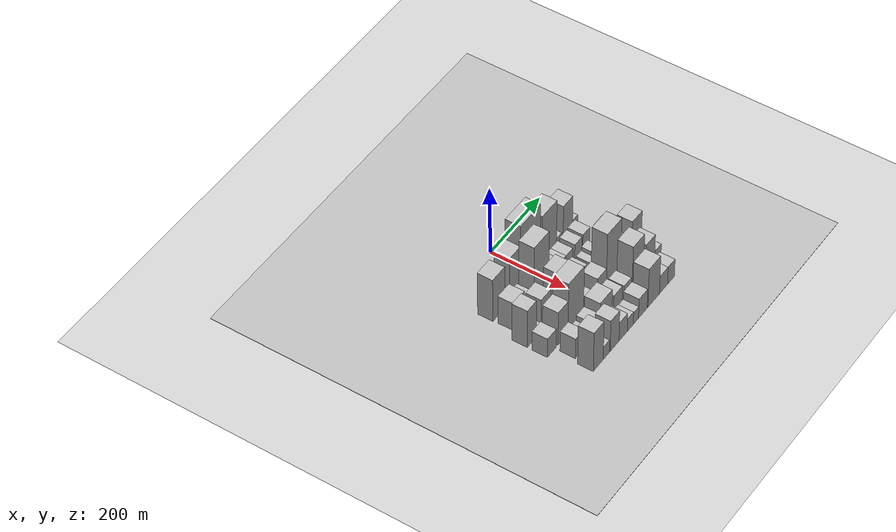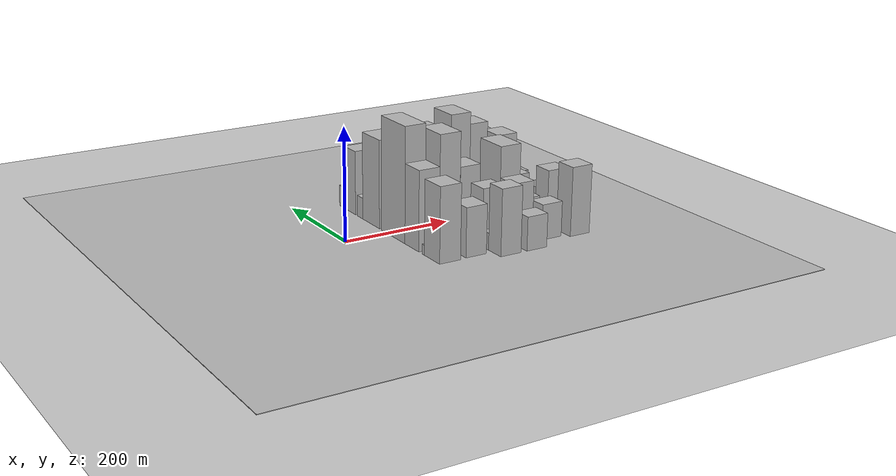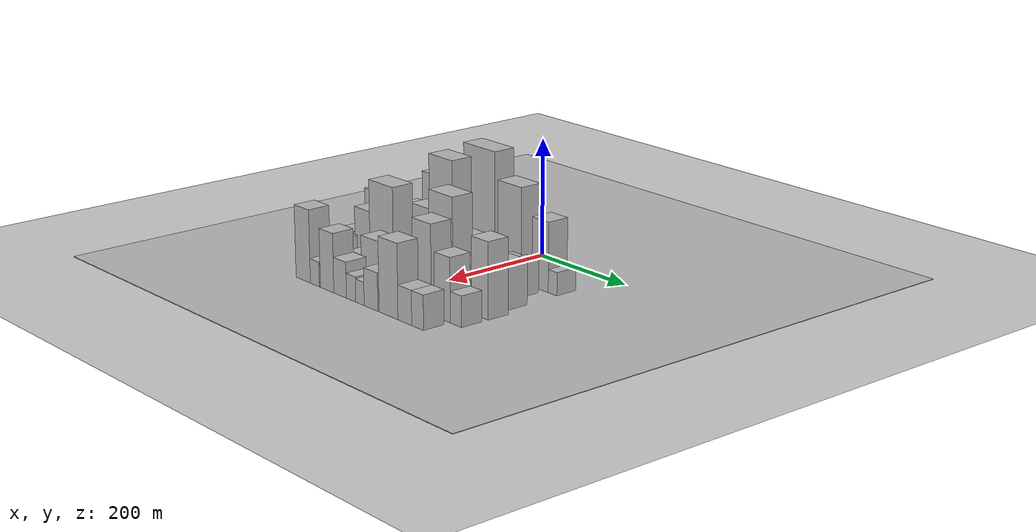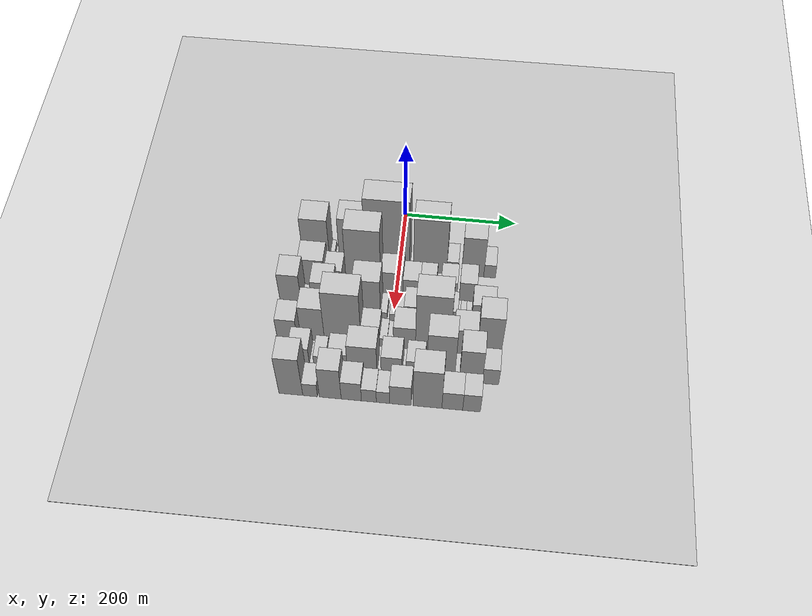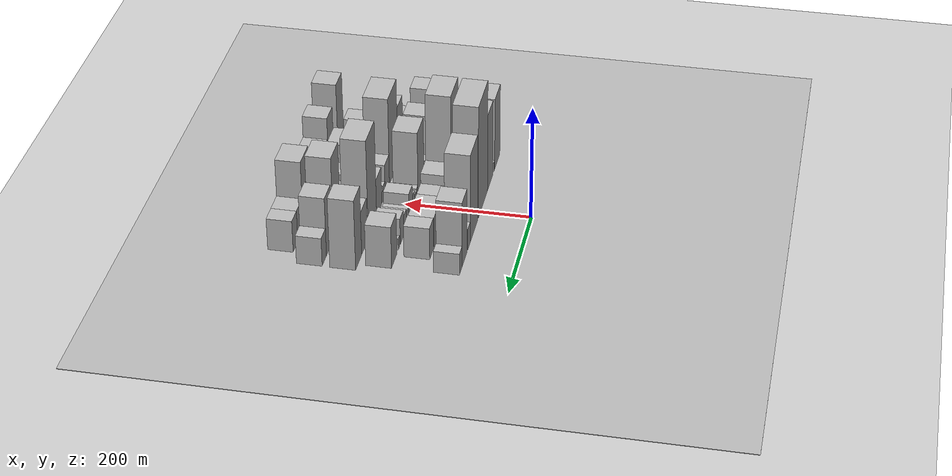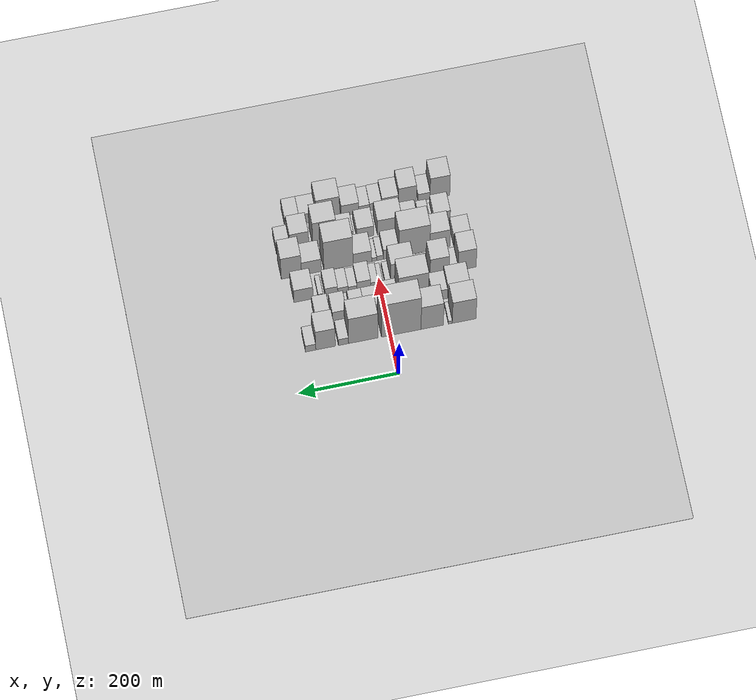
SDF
<sdf version="1.6">
 <world name="default">
  <include><name>ground_plane_1</name><uri>model://HANNAS_ground_plane</uri></include>
  <include>
   <name>ground_plane_2</name>
   <uri>model://HANNAS_ground_plane</uri>
   <pose>100 0 0  0 0 0</pose>
  </include>
  <model name="building_21">
   <static>1</static>
   <pose>100.0000 -146.3669 0 0.000000 0.000000 0.000000</pose>
   <link name="link">
    <pose>0 0 66.00 0 0 0</pose>
    <collision name="collision"><geometry><box><size>40.0000 47.4209 132.0000</size></box></geometry></collision>
    <visual name="visual">
     <cast_shadows>0</cast_shadows>
     <geometry><box><size>40.0000 47.4209 132.0000</size></box></geometry>
     <material>
      <script>
       <uri>model://HANNAS_wall/materials/scripts</uri>
       <uri>model://HANNAS_wall/materials/textures</uri>
       <name>vrc/HANNAS_wall</name>
      </script>
     </material>
    </visual>
   </link>
  </model>
  <model name="building_22">
   <static>1</static>
   <pose>100.0000 -118.8623 0 0.000000 0.000000 0.000000</pose>
   <link name="link">
    <pose>0 0 9.00 0 0 0</pose>
    <collision name="collision"><geometry><box><size>40.0000 7.5882 18.0000</size></box></geometry></collision>
    <visual name="visual">
     <cast_shadows>0</cast_shadows>
     <geometry><box><size>40.0000 7.5882 18.0000</size></box></geometry>
     <material>
      <script>
       <uri>model://HANNAS_wall/materials/scripts</uri>
       <uri>model://HANNAS_wall/materials/textures</uri>
       <name>vrc/HANNAS_wall</name>
      </script>
     </material>
    </visual>
   </link>
  </model>
  <model name="building_23">
   <static>1</static>
   <pose>100.0000 -82.6752 0 0.000000 0.000000 0.000000</pose>
   <link name="link">
    <pose>0 0 70.50 0 0 0</pose>
    <collision name="collision"><geometry><box><size>40.0000 44.7859 141.0000</size></box></geometry></collision>
    <visual name="visual">
     <cast_shadows>0</cast_shadows>
     <geometry><box><size>40.0000 44.7859 141.0000</size></box></geometry>
     <material>
      <script>
       <uri>model://HANNAS_wall/materials/scripts</uri>
       <uri>model://HANNAS_wall/materials/textures</uri>
       <name>vrc/HANNAS_wall</name>
      </script>
     </material>
    </visual>
   </link>
  </model>
  <model name="building_24">
   <static>1</static>
   <pose>100.0000 -20.8004 0 0.000000 0.000000 0.000000</pose>
   <link name="link">
    <pose>0 0 102.00 0 0 0</pose>
    <collision name="collision"><geometry><box><size>40.0000 78.9638 204.0000</size></box></geometry></collision>
    <visual name="visual">
     <cast_shadows>0</cast_shadows>
     <geometry><box><size>40.0000 78.9638 204.0000</size></box></geometry>
     <material>
      <script>
       <uri>model://HANNAS_wall/materials/scripts</uri>
       <uri>model://HANNAS_wall/materials/textures</uri>
       <name>vrc/HANNAS_wall</name>
      </script>
     </material>
    </visual>
   </link>
  </model>
  <model name="building_25">
   <static>1</static>
   <pose>100.0000 55.0314 0 0.000000 0.000000 0.000000</pose>
   <link name="link">
    <pose>0 0 79.50 0 0 0</pose>
    <collision name="collision"><geometry><box><size>40.0000 58.6997 159.0000</size></box></geometry></collision>
    <visual name="visual">
     <cast_shadows>0</cast_shadows>
     <geometry><box><size>40.0000 58.6997 159.0000</size></box></geometry>
     <material>
      <script>
       <uri>model://HANNAS_wall/materials/scripts</uri>
       <uri>model://HANNAS_wall/materials/textures</uri>
       <name>vrc/HANNAS_wall</name>
      </script>
     </material>
    </visual>
   </link>
  </model>
  <model name="building_26">
   <static>1</static>
   <pose>100.0000 94.5070 0 0.000000 0.000000 0.000000</pose>
   <link name="link">
    <pose>0 0 19.50 0 0 0</pose>
    <collision name="collision"><geometry><box><size>40.0000 20.2516 39.0000</size></box></geometry></collision>
    <visual name="visual">
     <cast_shadows>0</cast_shadows>
     <geometry><box><size>40.0000 20.2516 39.0000</size></box></geometry>
     <material>
      <script>
       <uri>model://HANNAS_wall/materials/scripts</uri>
       <uri>model://HANNAS_wall/materials/textures</uri>
       <name>vrc/HANNAS_wall</name>
      </script>
     </material>
    </visual>
   </link>
  </model>
  <model name="building_27">
   <static>1</static>
   <pose>100.0000 130.1339 0 0.000000 0.000000 0.000000</pose>
   <link name="link">
    <pose>0 0 58.50 0 0 0</pose>
    <collision name="collision"><geometry><box><size>40.0000 39.0021 117.0000</size></box></geometry></collision>
    <visual name="visual">
     <cast_shadows>0</cast_shadows>
     <geometry><box><size>40.0000 39.0021 117.0000</size></box></geometry>
     <material>
      <script>
       <uri>model://HANNAS_wall/materials/scripts</uri>
       <uri>model://HANNAS_wall/materials/textures</uri>
       <name>vrc/HANNAS_wall</name>
      </script>
     </material>
    </visual>
   </link>
  </model>
  <model name="building_28">
   <static>1</static>
   <pose>100.0000 159.9920 0 0.000000 0.000000 0.000000</pose>
   <link name="link">
    <pose>0 0 19.50 0 0 0</pose>
    <collision name="collision"><geometry><box><size>40.0000 20.7141 39.0000</size></box></geometry></collision>
    <visual name="visual">
     <cast_shadows>0</cast_shadows>
     <geometry><box><size>40.0000 20.7141 39.0000</size></box></geometry>
     <material>
      <script>
       <uri>model://HANNAS_wall/materials/scripts</uri>
       <uri>model://HANNAS_wall/materials/textures</uri>
       <name>vrc/HANNAS_wall</name>
      </script>
     </material>
    </visual>
   </link>
  </model>
  <model name="building_69">
   <static>1</static>
   <pose>152.0000 -145.8202 0 0.000000 0.000000 0.000000</pose>
   <link name="link">
    <pose>0 0 43.50 0 0 0</pose>
    <collision name="collision"><geometry><box><size>40.0000 43.8940 87.0000</size></box></geometry></collision>
    <visual name="visual">
     <cast_shadows>0</cast_shadows>
     <geometry><box><size>40.0000 43.8940 87.0000</size></box></geometry>
     <material>
      <script>
       <uri>model://HANNAS_wall/materials/scripts</uri>
       <uri>model://HANNAS_wall/materials/textures</uri>
       <name>vrc/HANNAS_wall</name>
      </script>
     </material>
    </visual>
   </link>
  </model>
  <model name="building_70">
   <static>1</static>
   <pose>152.0000 -108.3844 0 0.000000 0.000000 0.000000</pose>
   <link name="link">
    <pose>0 0 30.00 0 0 0</pose>
    <collision name="collision"><geometry><box><size>40.0000 30.9776 60.0000</size></box></geometry></collision>
    <visual name="visual">
     <cast_shadows>0</cast_shadows>
     <geometry><box><size>40.0000 30.9776 60.0000</size></box></geometry>
     <material>
      <script>
       <uri>model://HANNAS_wall/materials/scripts</uri>
       <uri>model://HANNAS_wall/materials/textures</uri>
       <name>vrc/HANNAS_wall</name>
      </script>
     </material>
    </visual>
   </link>
  </model>
  <model name="building_71">
   <static>1</static>
   <pose>152.0000 -56.1000 0 0.000000 0.000000 0.000000</pose>
   <link name="link">
    <pose>0 0 94.50 0 0 0</pose>
    <collision name="collision"><geometry><box><size>40.0000 59.5911 189.0000</size></box></geometry></collision>
    <visual name="visual">
     <cast_shadows>0</cast_shadows>
     <geometry><box><size>40.0000 59.5911 189.0000</size></box></geometry>
     <material>
      <script>
       <uri>model://HANNAS_wall/materials/scripts</uri>
       <uri>model://HANNAS_wall/materials/textures</uri>
       <name>vrc/HANNAS_wall</name>
      </script>
     </material>
    </visual>
   </link>
  </model>
  <model name="building_72">
   <static>1</static>
   <pose>152.0000 -7.0598 0 0.000000 0.000000 0.000000</pose>
   <link name="link">
    <pose>0 0 34.50 0 0 0</pose>
    <collision name="collision"><geometry><box><size>40.0000 38.4893 69.0000</size></box></geometry></collision>
    <visual name="visual">
     <cast_shadows>0</cast_shadows>
     <geometry><box><size>40.0000 38.4893 69.0000</size></box></geometry>
     <material>
      <script>
       <uri>model://HANNAS_wall/materials/scripts</uri>
       <uri>model://HANNAS_wall/materials/textures</uri>
       <name>vrc/HANNAS_wall</name>
      </script>
     </material>
    </visual>
   </link>
  </model>
  <model name="building_73">
   <static>1</static>
   <pose>152.0000 27.1182 0 0.000000 0.000000 0.000000</pose>
   <link name="link">
    <pose>0 0 25.50 0 0 0</pose>
    <collision name="collision"><geometry><box><size>40.0000 29.8667 51.0000</size></box></geometry></collision>
    <visual name="visual">
     <cast_shadows>0</cast_shadows>
     <geometry><box><size>40.0000 29.8667 51.0000</size></box></geometry>
     <material>
      <script>
       <uri>model://HANNAS_wall/materials/scripts</uri>
       <uri>model://HANNAS_wall/materials/textures</uri>
       <name>vrc/HANNAS_wall</name>
      </script>
     </material>
    </visual>
   </link>
  </model>
  <model name="building_74">
   <static>1</static>
   <pose>152.0000 55.7334 0 0.000000 0.000000 0.000000</pose>
   <link name="link">
    <pose>0 0 25.50 0 0 0</pose>
    <collision name="collision"><geometry><box><size>40.0000 27.3638 51.0000</size></box></geometry></collision>
    <visual name="visual">
     <cast_shadows>0</cast_shadows>
     <geometry><box><size>40.0000 27.3638 51.0000</size></box></geometry>
     <material>
      <script>
       <uri>model://HANNAS_wall/materials/scripts</uri>
       <uri>model://HANNAS_wall/materials/textures</uri>
       <name>vrc/HANNAS_wall</name>
      </script>
     </material>
    </visual>
   </link>
  </model>
  <model name="building_75">
   <static>1</static>
   <pose>152.0000 91.7584 0 0.000000 0.000000 0.000000</pose>
   <link name="link">
    <pose>0 0 27.00 0 0 0</pose>
    <collision name="collision"><geometry><box><size>40.0000 28.6861 54.0000</size></box></geometry></collision>
    <visual name="visual">
     <cast_shadows>0</cast_shadows>
     <geometry><box><size>40.0000 28.6861 54.0000</size></box></geometry>
     <material>
      <script>
       <uri>model://HANNAS_wall/materials/scripts</uri>
       <uri>model://HANNAS_wall/materials/textures</uri>
       <name>vrc/HANNAS_wall</name>
      </script>
     </material>
    </visual>
   </link>
  </model>
  <model name="building_76">
   <static>1</static>
   <pose>152.0000 124.8926 0 0.000000 0.000000 0.000000</pose>
   <link name="link">
    <pose>0 0 28.50 0 0 0</pose>
    <collision name="collision"><geometry><box><size>40.0000 29.5824 57.0000</size></box></geometry></collision>
    <visual name="visual">
     <cast_shadows>0</cast_shadows>
     <geometry><box><size>40.0000 29.5824 57.0000</size></box></geometry>
     <material>
      <script>
       <uri>model://HANNAS_wall/materials/scripts</uri>
       <uri>model://HANNAS_wall/materials/textures</uri>
       <name>vrc/HANNAS_wall</name>
      </script>
     </material>
    </visual>
   </link>
  </model>
  <model name="building_120">
   <static>1</static>
   <pose>204.0000 -174.0396 0 0.000000 0.000000 0.000000</pose>
   <link name="link">
    <pose>0 0 58.50 0 0 0</pose>
    <collision name="collision"><geometry><box><size>40.0000 36.3016 117.0000</size></box></geometry></collision>
    <visual name="visual">
     <cast_shadows>0</cast_shadows>
     <geometry><box><size>40.0000 36.3016 117.0000</size></box></geometry>
     <material>
      <script>
       <uri>model://HANNAS_wall/materials/scripts</uri>
       <uri>model://HANNAS_wall/materials/textures</uri>
       <name>vrc/HANNAS_wall</name>
      </script>
     </material>
    </visual>
   </link>
  </model>
  <model name="building_121">
   <static>1</static>
   <pose>204.0000 -146.9615 0 0.000000 0.000000 0.000000</pose>
   <link name="link">
    <pose>0 0 15.00 0 0 0</pose>
    <collision name="collision"><geometry><box><size>40.0000 17.8546 30.0000</size></box></geometry></collision>
    <visual name="visual">
     <cast_shadows>0</cast_shadows>
     <geometry><box><size>40.0000 17.8546 30.0000</size></box></geometry>
     <material>
      <script>
       <uri>model://HANNAS_wall/materials/scripts</uri>
       <uri>model://HANNAS_wall/materials/textures</uri>
       <name>vrc/HANNAS_wall</name>
      </script>
     </material>
    </visual>
   </link>
  </model>
  <model name="building_122">
   <static>1</static>
   <pose>204.0000 -118.9829 0 0.000000 0.000000 0.000000</pose>
   <link name="link">
    <pose>0 0 51.00 0 0 0</pose>
    <collision name="collision"><geometry><box><size>40.0000 38.1026 102.0000</size></box></geometry></collision>
    <visual name="visual">
     <cast_shadows>0</cast_shadows>
     <geometry><box><size>40.0000 38.1026 102.0000</size></box></geometry>
     <material>
      <script>
       <uri>model://HANNAS_wall/materials/scripts</uri>
       <uri>model://HANNAS_wall/materials/textures</uri>
       <name>vrc/HANNAS_wall</name>
      </script>
     </material>
    </visual>
   </link>
  </model>
  <model name="building_123">
   <static>1</static>
   <pose>204.0000 -86.7520 0 0.000000 0.000000 0.000000</pose>
   <link name="link">
    <pose>0 0 16.50 0 0 0</pose>
    <collision name="collision"><geometry><box><size>40.0000 18.3591 33.0000</size></box></geometry></collision>
    <visual name="visual">
     <cast_shadows>0</cast_shadows>
     <geometry><box><size>40.0000 18.3591 33.0000</size></box></geometry>
     <material>
      <script>
       <uri>model://HANNAS_wall/materials/scripts</uri>
       <uri>model://HANNAS_wall/materials/textures</uri>
       <name>vrc/HANNAS_wall</name>
      </script>
     </material>
    </visual>
   </link>
  </model>
  <model name="building_124">
   <static>1</static>
   <pose>204.0000 -44.3405 0 0.000000 0.000000 0.000000</pose>
   <link name="link">
    <pose>0 0 60.00 0 0 0</pose>
    <collision name="collision"><geometry><box><size>40.0000 46.4641 120.0000</size></box></geometry></collision>
    <visual name="visual">
     <cast_shadows>0</cast_shadows>
     <geometry><box><size>40.0000 46.4641 120.0000</size></box></geometry>
     <material>
      <script>
       <uri>model://HANNAS_wall/materials/scripts</uri>
       <uri>model://HANNAS_wall/materials/textures</uri>
       <name>vrc/HANNAS_wall</name>
      </script>
     </material>
    </visual>
   </link>
  </model>
  <model name="building_125">
   <static>1</static>
   <pose>204.0000 -15.4487 0 0.000000 0.000000 0.000000</pose>
   <link name="link">
    <pose>0 0 12.00 0 0 0</pose>
    <collision name="collision"><geometry><box><size>40.0000 11.3195 24.0000</size></box></geometry></collision>
    <visual name="visual">
     <cast_shadows>0</cast_shadows>
     <geometry><box><size>40.0000 11.3195 24.0000</size></box></geometry>
     <material>
      <script>
       <uri>model://HANNAS_wall/materials/scripts</uri>
       <uri>model://HANNAS_wall/materials/textures</uri>
       <name>vrc/HANNAS_wall</name>
      </script>
     </material>
    </visual>
   </link>
  </model>
  <model name="building_126">
   <static>1</static>
   <pose>204.0000 -0.9359 0 0.000000 0.000000 0.000000</pose>
   <link name="link">
    <pose>0 0 10.50 0 0 0</pose>
    <collision name="collision"><geometry><box><size>40.0000 9.7062 21.0000</size></box></geometry></collision>
    <visual name="visual">
     <cast_shadows>0</cast_shadows>
     <geometry><box><size>40.0000 9.7062 21.0000</size></box></geometry>
     <material>
      <script>
       <uri>model://HANNAS_wall/materials/scripts</uri>
       <uri>model://HANNAS_wall/materials/textures</uri>
       <name>vrc/HANNAS_wall</name>
      </script>
     </material>
    </visual>
   </link>
  </model>
  <model name="building_127">
   <static>1</static>
   <pose>204.0000 11.4635 0 0.000000 0.000000 0.000000</pose>
   <link name="link">
    <pose>0 0 15.00 0 0 0</pose>
    <collision name="collision"><geometry><box><size>40.0000 15.0927 30.0000</size></box></geometry></collision>
    <visual name="visual">
     <cast_shadows>0</cast_shadows>
     <geometry><box><size>40.0000 15.0927 30.0000</size></box></geometry>
     <material>
      <script>
       <uri>model://HANNAS_wall/materials/scripts</uri>
       <uri>model://HANNAS_wall/materials/textures</uri>
       <name>vrc/HANNAS_wall</name>
      </script>
     </material>
    </visual>
   </link>
  </model>
  <model name="building_128">
   <static>1</static>
   <pose>204.0000 32.6948 0 0.000000 0.000000 0.000000</pose>
   <link name="link">
    <pose>0 0 25.50 0 0 0</pose>
    <collision name="collision"><geometry><box><size>40.0000 27.3698 51.0000</size></box></geometry></collision>
    <visual name="visual">
     <cast_shadows>0</cast_shadows>
     <geometry><box><size>40.0000 27.3698 51.0000</size></box></geometry>
     <material>
      <script>
       <uri>model://HANNAS_wall/materials/scripts</uri>
       <uri>model://HANNAS_wall/materials/textures</uri>
       <name>vrc/HANNAS_wall</name>
      </script>
     </material>
    </visual>
   </link>
  </model>
  <model name="building_129">
   <static>1</static>
   <pose>204.0000 55.2633 0 0.000000 0.000000 0.000000</pose>
   <link name="link">
    <pose>0 0 15.00 0 0 0</pose>
    <collision name="collision"><geometry><box><size>40.0000 17.7672 30.0000</size></box></geometry></collision>
    <visual name="visual">
     <cast_shadows>0</cast_shadows>
     <geometry><box><size>40.0000 17.7672 30.0000</size></box></geometry>
     <material>
      <script>
       <uri>model://HANNAS_wall/materials/scripts</uri>
       <uri>model://HANNAS_wall/materials/textures</uri>
       <name>vrc/HANNAS_wall</name>
      </script>
     </material>
    </visual>
   </link>
  </model>
  <model name="building_130">
   <static>1</static>
   <pose>204.0000 74.5748 0 0.000000 0.000000 0.000000</pose>
   <link name="link">
    <pose>0 0 18.00 0 0 0</pose>
    <collision name="collision"><geometry><box><size>40.0000 20.8560 36.0000</size></box></geometry></collision>
    <visual name="visual">
     <cast_shadows>0</cast_shadows>
     <geometry><box><size>40.0000 20.8560 36.0000</size></box></geometry>
     <material>
      <script>
       <uri>model://HANNAS_wall/materials/scripts</uri>
       <uri>model://HANNAS_wall/materials/textures</uri>
       <name>vrc/HANNAS_wall</name>
      </script>
     </material>
    </visual>
   </link>
  </model>
  <model name="building_131">
   <static>1</static>
   <pose>204.0000 97.6627 0 0.000000 0.000000 0.000000</pose>
   <link name="link">
    <pose>0 0 24.00 0 0 0</pose>
    <collision name="collision"><geometry><box><size>40.0000 25.3198 48.0000</size></box></geometry></collision>
    <visual name="visual">
     <cast_shadows>0</cast_shadows>
     <geometry><box><size>40.0000 25.3198 48.0000</size></box></geometry>
     <material>
      <script>
       <uri>model://HANNAS_wall/materials/scripts</uri>
       <uri>model://HANNAS_wall/materials/textures</uri>
       <name>vrc/HANNAS_wall</name>
      </script>
     </material>
    </visual>
   </link>
  </model>
  <model name="building_132">
   <static>1</static>
   <pose>204.0000 119.2019 0 0.000000 0.000000 0.000000</pose>
   <link name="link">
    <pose>0 0 10.50 0 0 0</pose>
    <collision name="collision"><geometry><box><size>40.0000 9.7584 21.0000</size></box></geometry></collision>
    <visual name="visual">
     <cast_shadows>0</cast_shadows>
     <geometry><box><size>40.0000 9.7584 21.0000</size></box></geometry>
     <material>
      <script>
       <uri>model://HANNAS_wall/materials/scripts</uri>
       <uri>model://HANNAS_wall/materials/textures</uri>
       <name>vrc/HANNAS_wall</name>
      </script>
     </material>
    </visual>
   </link>
  </model>
  <model name="building_133">
   <static>1</static>
   <pose>204.0000 153.3332 0 0.000000 0.000000 0.000000</pose>
   <link name="link">
    <pose>0 0 37.50 0 0 0</pose>
    <collision name="collision"><geometry><box><size>40.0000 38.5042 75.0000</size></box></geometry></collision>
    <visual name="visual">
     <cast_shadows>0</cast_shadows>
     <geometry><box><size>40.0000 38.5042 75.0000</size></box></geometry>
     <material>
      <script>
       <uri>model://HANNAS_wall/materials/scripts</uri>
       <uri>model://HANNAS_wall/materials/textures</uri>
       <name>vrc/HANNAS_wall</name>
      </script>
     </material>
    </visual>
   </link>
  </model>
  <model name="building_171">
   <static>1</static>
   <pose>256.0000 -174.9906 0 0.000000 0.000000 0.000000</pose>
   <link name="link">
    <pose>0 0 30.00 0 0 0</pose>
    <collision name="collision"><geometry><box><size>40.0000 34.5190 60.0000</size></box></geometry></collision>
    <visual name="visual">
     <cast_shadows>0</cast_shadows>
     <geometry><box><size>40.0000 34.5190 60.0000</size></box></geometry>
     <material>
      <script>
       <uri>model://HANNAS_wall/materials/scripts</uri>
       <uri>model://HANNAS_wall/materials/textures</uri>
       <name>vrc/HANNAS_wall</name>
      </script>
     </material>
    </visual>
   </link>
  </model>
  <model name="building_172">
   <static>1</static>
   <pose>256.0000 -130.5795 0 0.000000 0.000000 0.000000</pose>
   <link name="link">
    <pose>0 0 52.50 0 0 0</pose>
    <collision name="collision"><geometry><box><size>40.0000 40.3032 105.0000</size></box></geometry></collision>
    <visual name="visual">
     <cast_shadows>0</cast_shadows>
     <geometry><box><size>40.0000 40.3032 105.0000</size></box></geometry>
     <material>
      <script>
       <uri>model://HANNAS_wall/materials/scripts</uri>
       <uri>model://HANNAS_wall/materials/textures</uri>
       <name>vrc/HANNAS_wall</name>
      </script>
     </material>
    </visual>
   </link>
  </model>
  <model name="building_173">
   <static>1</static>
   <pose>256.0000 -79.3695 0 0.000000 0.000000 0.000000</pose>
   <link name="link">
    <pose>0 0 79.50 0 0 0</pose>
    <collision name="collision"><geometry><box><size>40.0000 62.1167 159.0000</size></box></geometry></collision>
    <visual name="visual">
     <cast_shadows>0</cast_shadows>
     <geometry><box><size>40.0000 62.1167 159.0000</size></box></geometry>
     <material>
      <script>
       <uri>model://HANNAS_wall/materials/scripts</uri>
       <uri>model://HANNAS_wall/materials/textures</uri>
       <name>vrc/HANNAS_wall</name>
      </script>
     </material>
    </visual>
   </link>
  </model>
  <model name="building_174">
   <static>1</static>
   <pose>256.0000 -32.5837 0 0.000000 0.000000 0.000000</pose>
   <link name="link">
    <pose>0 0 28.50 0 0 0</pose>
    <collision name="collision"><geometry><box><size>40.0000 31.4550 57.0000</size></box></geometry></collision>
    <visual name="visual">
     <cast_shadows>0</cast_shadows>
     <geometry><box><size>40.0000 31.4550 57.0000</size></box></geometry>
     <material>
      <script>
       <uri>model://HANNAS_wall/materials/scripts</uri>
       <uri>model://HANNAS_wall/materials/textures</uri>
       <name>vrc/HANNAS_wall</name>
      </script>
     </material>
    </visual>
   </link>
  </model>
  <model name="building_175">
   <static>1</static>
   <pose>256.0000 -10.3083 0 0.000000 0.000000 0.000000</pose>
   <link name="link">
    <pose>0 0 13.50 0 0 0</pose>
    <collision name="collision"><geometry><box><size>40.0000 13.0957 27.0000</size></box></geometry></collision>
    <visual name="visual">
     <cast_shadows>0</cast_shadows>
     <geometry><box><size>40.0000 13.0957 27.0000</size></box></geometry>
     <material>
      <script>
       <uri>model://HANNAS_wall/materials/scripts</uri>
       <uri>model://HANNAS_wall/materials/textures</uri>
       <name>vrc/HANNAS_wall</name>
      </script>
     </material>
    </visual>
   </link>
  </model>
  <model name="building_176">
   <static>1</static>
   <pose>256.0000 1.4428 0 0.000000 0.000000 0.000000</pose>
   <link name="link">
    <pose>0 0 10.50 0 0 0</pose>
    <collision name="collision"><geometry><box><size>40.0000 10.4065 21.0000</size></box></geometry></collision>
    <visual name="visual">
     <cast_shadows>0</cast_shadows>
     <geometry><box><size>40.0000 10.4065 21.0000</size></box></geometry>
     <material>
      <script>
       <uri>model://HANNAS_wall/materials/scripts</uri>
       <uri>model://HANNAS_wall/materials/textures</uri>
       <name>vrc/HANNAS_wall</name>
      </script>
     </material>
    </visual>
   </link>
  </model>
  <model name="building_177">
   <static>1</static>
   <pose>256.0000 25.2724 0 0.000000 0.000000 0.000000</pose>
   <link name="link">
    <pose>0 0 34.50 0 0 0</pose>
    <collision name="collision"><geometry><box><size>40.0000 37.2526 69.0000</size></box></geometry></collision>
    <visual name="visual">
     <cast_shadows>0</cast_shadows>
     <geometry><box><size>40.0000 37.2526 69.0000</size></box></geometry>
     <material>
      <script>
       <uri>model://HANNAS_wall/materials/scripts</uri>
       <uri>model://HANNAS_wall/materials/textures</uri>
       <name>vrc/HANNAS_wall</name>
      </script>
     </material>
    </visual>
   </link>
  </model>
  <model name="building_178">
   <static>1</static>
   <pose>256.0000 73.0639 0 0.000000 0.000000 0.000000</pose>
   <link name="link">
    <pose>0 0 88.50 0 0 0</pose>
    <collision name="collision"><geometry><box><size>40.0000 58.3304 177.0000</size></box></geometry></collision>
    <visual name="visual">
     <cast_shadows>0</cast_shadows>
     <geometry><box><size>40.0000 58.3304 177.0000</size></box></geometry>
     <material>
      <script>
       <uri>model://HANNAS_wall/materials/scripts</uri>
       <uri>model://HANNAS_wall/materials/textures</uri>
       <name>vrc/HANNAS_wall</name>
      </script>
     </material>
    </visual>
   </link>
  </model>
  <model name="building_179">
   <static>1</static>
   <pose>256.0000 127.1322 0 0.000000 0.000000 0.000000</pose>
   <link name="link">
    <pose>0 0 39.00 0 0 0</pose>
    <collision name="collision"><geometry><box><size>40.0000 39.8063 78.0000</size></box></geometry></collision>
    <visual name="visual">
     <cast_shadows>0</cast_shadows>
     <geometry><box><size>40.0000 39.8063 78.0000</size></box></geometry>
     <material>
      <script>
       <uri>model://HANNAS_wall/materials/scripts</uri>
       <uri>model://HANNAS_wall/materials/textures</uri>
       <name>vrc/HANNAS_wall</name>
      </script>
     </material>
    </visual>
   </link>
  </model>
  <model name="building_180">
   <static>1</static>
   <pose>256.0000 167.3142 0 0.000000 0.000000 0.000000</pose>
   <link name="link">
    <pose>0 0 63.00 0 0 0</pose>
    <collision name="collision"><geometry><box><size>40.0000 40.5577 126.0000</size></box></geometry></collision>
    <visual name="visual">
     <cast_shadows>0</cast_shadows>
     <geometry><box><size>40.0000 40.5577 126.0000</size></box></geometry>
     <material>
      <script>
       <uri>model://HANNAS_wall/materials/scripts</uri>
       <uri>model://HANNAS_wall/materials/textures</uri>
       <name>vrc/HANNAS_wall</name>
      </script>
     </material>
    </visual>
   </link>
  </model>
  <model name="building_219">
   <static>1</static>
   <pose>308.0000 -144.8545 0 0.000000 0.000000 0.000000</pose>
   <link name="link">
    <pose>0 0 31.50 0 0 0</pose>
    <collision name="collision"><geometry><box><size>40.0000 33.7891 63.0000</size></box></geometry></collision>
    <visual name="visual">
     <cast_shadows>0</cast_shadows>
     <geometry><box><size>40.0000 33.7891 63.0000</size></box></geometry>
     <material>
      <script>
       <uri>model://HANNAS_wall/materials/scripts</uri>
       <uri>model://HANNAS_wall/materials/textures</uri>
       <name>vrc/HANNAS_wall</name>
      </script>
     </material>
    </visual>
   </link>
  </model>
  <model name="building_220">
   <static>1</static>
   <pose>308.0000 -124.3566 0 0.000000 0.000000 0.000000</pose>
   <link name="link">
    <pose>0 0 7.50 0 0 0</pose>
    <collision name="collision"><geometry><box><size>40.0000 7.2067 15.0000</size></box></geometry></collision>
    <visual name="visual">
     <cast_shadows>0</cast_shadows>
     <geometry><box><size>40.0000 7.2067 15.0000</size></box></geometry>
     <material>
      <script>
       <uri>model://HANNAS_wall/materials/scripts</uri>
       <uri>model://HANNAS_wall/materials/textures</uri>
       <name>vrc/HANNAS_wall</name>
      </script>
     </material>
    </visual>
   </link>
  </model>
  <model name="building_221">
   <static>1</static>
   <pose>308.0000 -110.2477 0 0.000000 0.000000 0.000000</pose>
   <link name="link">
    <pose>0 0 21.00 0 0 0</pose>
    <collision name="collision"><geometry><box><size>40.0000 21.0110 42.0000</size></box></geometry></collision>
    <visual name="visual">
     <cast_shadows>0</cast_shadows>
     <geometry><box><size>40.0000 21.0110 42.0000</size></box></geometry>
     <material>
      <script>
       <uri>model://HANNAS_wall/materials/scripts</uri>
       <uri>model://HANNAS_wall/materials/textures</uri>
       <name>vrc/HANNAS_wall</name>
      </script>
     </material>
    </visual>
   </link>
  </model>
  <model name="building_222">
   <static>1</static>
   <pose>308.0000 -80.7277 0 0.000000 0.000000 0.000000</pose>
   <link name="link">
    <pose>0 0 27.00 0 0 0</pose>
    <collision name="collision"><geometry><box><size>40.0000 32.0289 54.0000</size></box></geometry></collision>
    <visual name="visual">
     <cast_shadows>0</cast_shadows>
     <geometry><box><size>40.0000 32.0289 54.0000</size></box></geometry>
     <material>
      <script>
       <uri>model://HANNAS_wall/materials/scripts</uri>
       <uri>model://HANNAS_wall/materials/textures</uri>
       <name>vrc/HANNAS_wall</name>
      </script>
     </material>
    </visual>
   </link>
  </model>
  <model name="building_223">
   <static>1</static>
   <pose>308.0000 -40.0851 0 0.000000 0.000000 0.000000</pose>
   <link name="link">
    <pose>0 0 43.50 0 0 0</pose>
    <collision name="collision"><geometry><box><size>40.0000 49.2563 87.0000</size></box></geometry></collision>
    <visual name="visual">
     <cast_shadows>0</cast_shadows>
     <geometry><box><size>40.0000 49.2563 87.0000</size></box></geometry>
     <material>
      <script>
       <uri>model://HANNAS_wall/materials/scripts</uri>
       <uri>model://HANNAS_wall/materials/textures</uri>
       <name>vrc/HANNAS_wall</name>
      </script>
     </material>
    </visual>
   </link>
  </model>
  <model name="building_224">
   <static>1</static>
   <pose>308.0000 8.7270 0 0.000000 0.000000 0.000000</pose>
   <link name="link">
    <pose>0 0 30.00 0 0 0</pose>
    <collision name="collision"><geometry><box><size>40.0000 34.3678 60.0000</size></box></geometry></collision>
    <visual name="visual">
     <cast_shadows>0</cast_shadows>
     <geometry><box><size>40.0000 34.3678 60.0000</size></box></geometry>
     <material>
      <script>
       <uri>model://HANNAS_wall/materials/scripts</uri>
       <uri>model://HANNAS_wall/materials/textures</uri>
       <name>vrc/HANNAS_wall</name>
      </script>
     </material>
    </visual>
   </link>
  </model>
  <model name="building_225">
   <static>1</static>
   <pose>308.0000 48.0465 0 0.000000 0.000000 0.000000</pose>
   <link name="link">
    <pose>0 0 27.00 0 0 0</pose>
    <collision name="collision"><geometry><box><size>40.0000 30.2713 54.0000</size></box></geometry></collision>
    <visual name="visual">
     <cast_shadows>0</cast_shadows>
     <geometry><box><size>40.0000 30.2713 54.0000</size></box></geometry>
     <material>
      <script>
       <uri>model://HANNAS_wall/materials/scripts</uri>
       <uri>model://HANNAS_wall/materials/textures</uri>
       <name>vrc/HANNAS_wall</name>
      </script>
     </material>
    </visual>
   </link>
  </model>
  <model name="building_226">
   <static>1</static>
   <pose>308.0000 90.4719 0 0.000000 0.000000 0.000000</pose>
   <link name="link">
    <pose>0 0 73.50 0 0 0</pose>
    <collision name="collision"><geometry><box><size>40.0000 46.5794 147.0000</size></box></geometry></collision>
    <visual name="visual">
     <cast_shadows>0</cast_shadows>
     <geometry><box><size>40.0000 46.5794 147.0000</size></box></geometry>
     <material>
      <script>
       <uri>model://HANNAS_wall/materials/scripts</uri>
       <uri>model://HANNAS_wall/materials/textures</uri>
       <name>vrc/HANNAS_wall</name>
      </script>
     </material>
    </visual>
   </link>
  </model>
  <model name="building_227">
   <static>1</static>
   <pose>308.0000 140.6831 0 0.000000 0.000000 0.000000</pose>
   <link name="link">
    <pose>0 0 52.50 0 0 0</pose>
    <collision name="collision"><geometry><box><size>40.0000 37.8431 105.0000</size></box></geometry></collision>
    <visual name="visual">
     <cast_shadows>0</cast_shadows>
     <geometry><box><size>40.0000 37.8431 105.0000</size></box></geometry>
     <material>
      <script>
       <uri>model://HANNAS_wall/materials/scripts</uri>
       <uri>model://HANNAS_wall/materials/textures</uri>
       <name>vrc/HANNAS_wall</name>
      </script>
     </material>
    </visual>
   </link>
  </model>
  <model name="building_228">
   <static>1</static>
   <pose>308.0000 173.2924 0 0.000000 0.000000 0.000000</pose>
   <link name="link">
    <pose>0 0 25.50 0 0 0</pose>
    <collision name="collision"><geometry><box><size>40.0000 27.3754 51.0000</size></box></geometry></collision>
    <visual name="visual">
     <cast_shadows>0</cast_shadows>
     <geometry><box><size>40.0000 27.3754 51.0000</size></box></geometry>
     <material>
      <script>
       <uri>model://HANNAS_wall/materials/scripts</uri>
       <uri>model://HANNAS_wall/materials/textures</uri>
       <name>vrc/HANNAS_wall</name>
      </script>
     </material>
    </visual>
   </link>
  </model>
  <model name="building_274">
   <static>1</static>
   <pose>360.0000 -151.9273 0 0.000000 0.000000 0.000000</pose>
   <link name="link">
    <pose>0 0 61.50 0 0 0</pose>
    <collision name="collision"><geometry><box><size>40.0000 39.6433 123.0000</size></box></geometry></collision>
    <visual name="visual">
     <cast_shadows>0</cast_shadows>
     <geometry><box><size>40.0000 39.6433 123.0000</size></box></geometry>
     <material>
      <script>
       <uri>model://HANNAS_wall/materials/scripts</uri>
       <uri>model://HANNAS_wall/materials/textures</uri>
       <name>vrc/HANNAS_wall</name>
      </script>
     </material>
    </visual>
   </link>
  </model>
  <model name="building_275">
   <static>1</static>
   <pose>360.0000 -119.8659 0 0.000000 0.000000 0.000000</pose>
   <link name="link">
    <pose>0 0 21.00 0 0 0</pose>
    <collision name="collision"><geometry><box><size>40.0000 24.4795 42.0000</size></box></geometry></collision>
    <visual name="visual">
     <cast_shadows>0</cast_shadows>
     <geometry><box><size>40.0000 24.4795 42.0000</size></box></geometry>
     <material>
      <script>
       <uri>model://HANNAS_wall/materials/scripts</uri>
       <uri>model://HANNAS_wall/materials/textures</uri>
       <name>vrc/HANNAS_wall</name>
      </script>
     </material>
    </visual>
   </link>
  </model>
  <model name="building_276">
   <static>1</static>
   <pose>360.0000 -86.5716 0 0.000000 0.000000 0.000000</pose>
   <link name="link">
    <pose>0 0 49.50 0 0 0</pose>
    <collision name="collision"><geometry><box><size>40.0000 36.1091 99.0000</size></box></geometry></collision>
    <visual name="visual">
     <cast_shadows>0</cast_shadows>
     <geometry><box><size>40.0000 36.1091 99.0000</size></box></geometry>
     <material>
      <script>
       <uri>model://HANNAS_wall/materials/scripts</uri>
       <uri>model://HANNAS_wall/materials/textures</uri>
       <name>vrc/HANNAS_wall</name>
      </script>
     </material>
    </visual>
   </link>
  </model>
  <model name="building_277">
   <static>1</static>
   <pose>360.0000 -51.8158 0 0.000000 0.000000 0.000000</pose>
   <link name="link">
    <pose>0 0 30.00 0 0 0</pose>
    <collision name="collision"><geometry><box><size>40.0000 33.4025 60.0000</size></box></geometry></collision>
    <visual name="visual">
     <cast_shadows>0</cast_shadows>
     <geometry><box><size>40.0000 33.4025 60.0000</size></box></geometry>
     <material>
      <script>
       <uri>model://HANNAS_wall/materials/scripts</uri>
       <uri>model://HANNAS_wall/materials/textures</uri>
       <name>vrc/HANNAS_wall</name>
      </script>
     </material>
    </visual>
   </link>
  </model>
  <model name="building_278">
   <static>1</static>
   <pose>360.0000 -22.8098 0 0.000000 0.000000 0.000000</pose>
   <link name="link">
    <pose>0 0 21.00 0 0 0</pose>
    <collision name="collision"><geometry><box><size>40.0000 24.6095 42.0000</size></box></geometry></collision>
    <visual name="visual">
     <cast_shadows>0</cast_shadows>
     <geometry><box><size>40.0000 24.6095 42.0000</size></box></geometry>
     <material>
      <script>
       <uri>model://HANNAS_wall/materials/scripts</uri>
       <uri>model://HANNAS_wall/materials/textures</uri>
       <name>vrc/HANNAS_wall</name>
      </script>
     </material>
    </visual>
   </link>
  </model>
  <model name="building_279">
   <static>1</static>
   <pose>360.0000 0.2941 0 0.000000 0.000000 0.000000</pose>
   <link name="link">
    <pose>0 0 19.50 0 0 0</pose>
    <collision name="collision"><geometry><box><size>40.0000 21.5984 39.0000</size></box></geometry></collision>
    <visual name="visual">
     <cast_shadows>0</cast_shadows>
     <geometry><box><size>40.0000 21.5984 39.0000</size></box></geometry>
     <material>
      <script>
       <uri>model://HANNAS_wall/materials/scripts</uri>
       <uri>model://HANNAS_wall/materials/textures</uri>
       <name>vrc/HANNAS_wall</name>
      </script>
     </material>
    </visual>
   </link>
  </model>
  <model name="building_280">
   <static>1</static>
   <pose>360.0000 28.7933 0 0.000000 0.000000 0.000000</pose>
   <link name="link">
    <pose>0 0 31.50 0 0 0</pose>
    <collision name="collision"><geometry><box><size>40.0000 35.4000 63.0000</size></box></geometry></collision>
    <visual name="visual">
     <cast_shadows>0</cast_shadows>
     <geometry><box><size>40.0000 35.4000 63.0000</size></box></geometry>
     <material>
      <script>
       <uri>model://HANNAS_wall/materials/scripts</uri>
       <uri>model://HANNAS_wall/materials/textures</uri>
       <name>vrc/HANNAS_wall</name>
      </script>
     </material>
    </visual>
   </link>
  </model>
  <model name="building_281">
   <static>1</static>
   <pose>360.0000 73.3091 0 0.000000 0.000000 0.000000</pose>
   <link name="link">
    <pose>0 0 61.50 0 0 0</pose>
    <collision name="collision"><geometry><box><size>40.0000 47.6316 123.0000</size></box></geometry></collision>
    <visual name="visual">
     <cast_shadows>0</cast_shadows>
     <geometry><box><size>40.0000 47.6316 123.0000</size></box></geometry>
     <material>
      <script>
       <uri>model://HANNAS_wall/materials/scripts</uri>
       <uri>model://HANNAS_wall/materials/textures</uri>
       <name>vrc/HANNAS_wall</name>
      </script>
     </material>
    </visual>
   </link>
  </model>
  <model name="building_282">
   <static>1</static>
   <pose>360.0000 114.1148 0 0.000000 0.000000 0.000000</pose>
   <link name="link">
    <pose>0 0 28.50 0 0 0</pose>
    <collision name="collision"><geometry><box><size>40.0000 33.9798 57.0000</size></box></geometry></collision>
    <visual name="visual">
     <cast_shadows>0</cast_shadows>
     <geometry><box><size>40.0000 33.9798 57.0000</size></box></geometry>
     <material>
      <script>
       <uri>model://HANNAS_wall/materials/scripts</uri>
       <uri>model://HANNAS_wall/materials/textures</uri>
       <name>vrc/HANNAS_wall</name>
      </script>
     </material>
    </visual>
   </link>
  </model>
  <model name="building_283">
   <static>1</static>
   <pose>360.0000 145.5278 0 0.000000 0.000000 0.000000</pose>
   <link name="link">
    <pose>0 0 28.50 0 0 0</pose>
    <collision name="collision"><geometry><box><size>40.0000 28.8462 57.0000</size></box></geometry></collision>
    <visual name="visual">
     <cast_shadows>0</cast_shadows>
     <geometry><box><size>40.0000 28.8462 57.0000</size></box></geometry>
     <material>
      <script>
       <uri>model://HANNAS_wall/materials/scripts</uri>
       <uri>model://HANNAS_wall/materials/textures</uri>
       <name>vrc/HANNAS_wall</name>
      </script>
     </material>
    </visual>
   </link>
  </model>
 </world>
</sdf>
